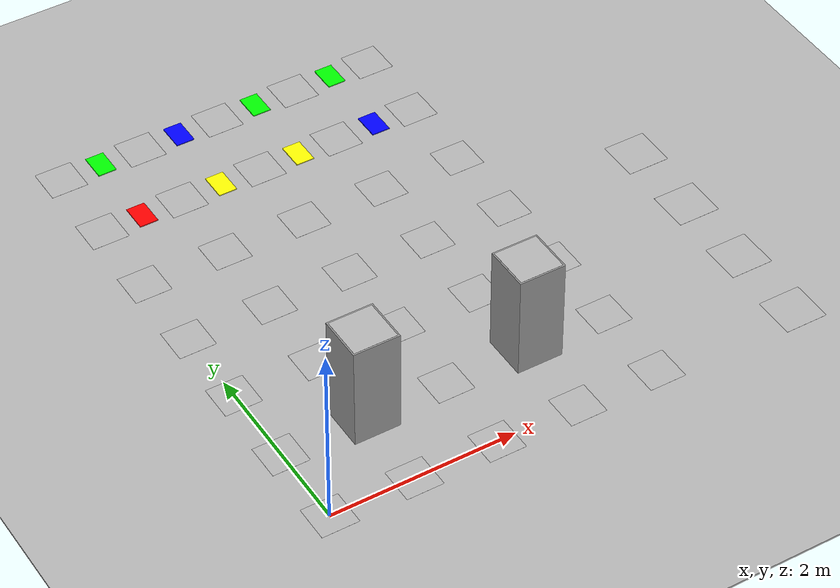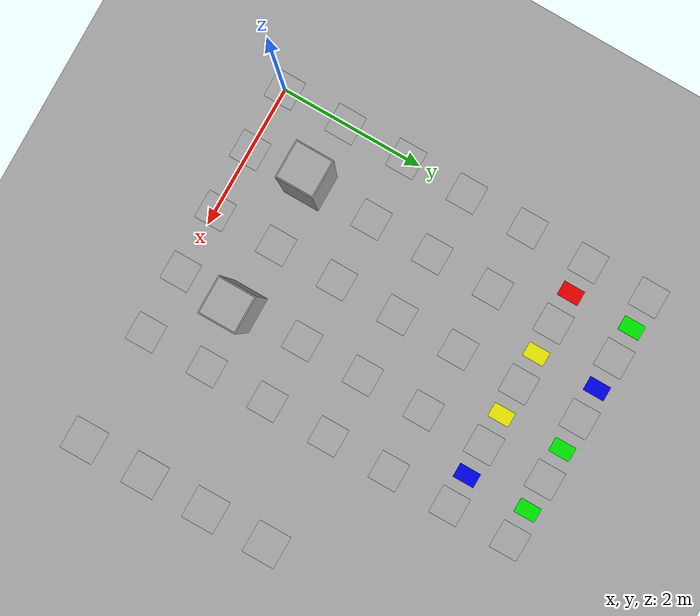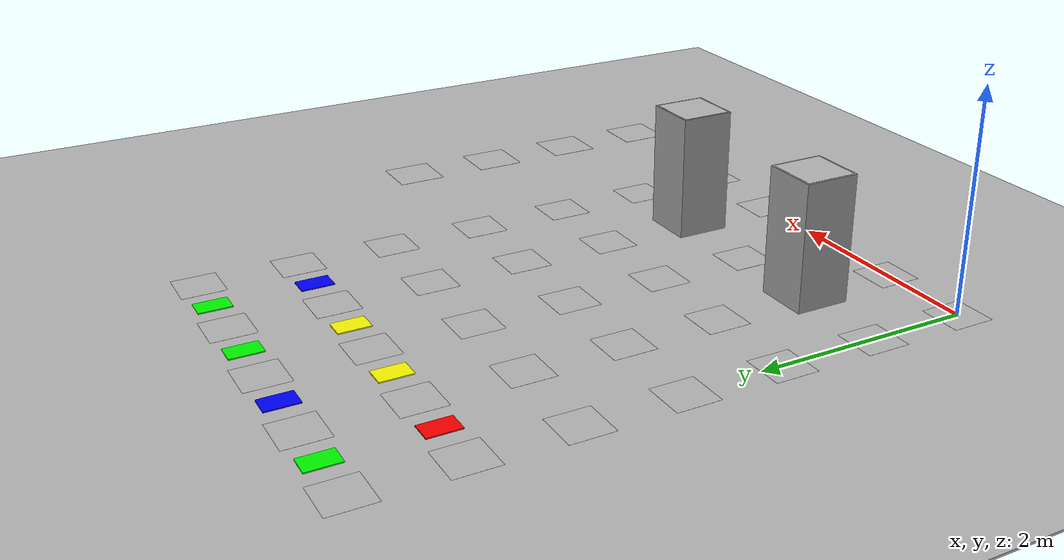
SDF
<sdf version="1.6">
 <world name="default">
  <model name="aruco_2_35">
   <static>1</static>
   <link name="aruco_2_35_link">
    <visual name="visual_marker_2_0">
     <pose>0 0 0 0 -0 1.5708</pose>
     <cast_shadows>0</cast_shadows>
     <geometry><box><size>0.4 0.4 0.001</size></box></geometry>
     <material>
      <script>
       <uri>model://aruco_map_guap_txt/materials/scripts</uri>
       <uri>model://aruco_map_guap_txt/materials/textures</uri>
       <name>aruco/marker_2_0</name>
      </script>
     </material>
    </visual>
    <visual name="visual_marker_2_1">
     <pose>0.9 0 0 0 -0 1.5708</pose>
     <cast_shadows>0</cast_shadows>
     <geometry><box><size>0.4 0.4 0.001</size></box></geometry>
     <material>
      <script>
       <uri>model://aruco_map_guap_txt/materials/scripts</uri>
       <uri>model://aruco_map_guap_txt/materials/textures</uri>
       <name>aruco/marker_2_1</name>
      </script>
     </material>
    </visual>
    <visual name="visual_marker_2_2">
     <pose>1.8 0 0 0 -0 1.5708</pose>
     <cast_shadows>0</cast_shadows>
     <geometry><box><size>0.4 0.4 0.001</size></box></geometry>
     <material>
      <script>
       <uri>model://aruco_map_guap_txt/materials/scripts</uri>
       <uri>model://aruco_map_guap_txt/materials/textures</uri>
       <name>aruco/marker_2_2</name>
      </script>
     </material>
    </visual>
    <visual name="visual_marker_2_3">
     <pose>2.7 0 0 0 -0 1.5708</pose>
     <cast_shadows>0</cast_shadows>
     <geometry><box><size>0.4 0.4 0.001</size></box></geometry>
     <material>
      <script>
       <uri>model://aruco_map_guap_txt/materials/scripts</uri>
       <uri>model://aruco_map_guap_txt/materials/textures</uri>
       <name>aruco/marker_2_3</name>
      </script>
     </material>
    </visual>
    <visual name="visual_marker_2_4">
     <pose>3.6 0 0 0 -0 1.5708</pose>
     <cast_shadows>0</cast_shadows>
     <geometry><box><size>0.4 0.4 0.001</size></box></geometry>
     <material>
      <script>
       <uri>model://aruco_map_guap_txt/materials/scripts</uri>
       <uri>model://aruco_map_guap_txt/materials/textures</uri>
       <name>aruco/marker_2_4</name>
      </script>
     </material>
    </visual>
    <visual name="visual_marker_2_5">
     <pose>0 0.9 0 0 -0 1.5708</pose>
     <cast_shadows>0</cast_shadows>
     <geometry><box><size>0.4 0.4 0.001</size></box></geometry>
     <material>
      <script>
       <uri>model://aruco_map_guap_txt/materials/scripts</uri>
       <uri>model://aruco_map_guap_txt/materials/textures</uri>
       <name>aruco/marker_2_5</name>
      </script>
     </material>
    </visual>
    <visual name="visual_marker_2_6">
     <pose>0.9 0.9 0 0 -0 1.5708</pose>
     <cast_shadows>0</cast_shadows>
     <geometry><box><size>0.4 0.4 0.001</size></box></geometry>
     <material>
      <script>
       <uri>model://aruco_map_guap_txt/materials/scripts</uri>
       <uri>model://aruco_map_guap_txt/materials/textures</uri>
       <name>aruco/marker_2_6</name>
      </script>
     </material>
    </visual>
    <visual name="visual_marker_2_7">
     <pose>1.8 0.9 0 0 -0 1.5708</pose>
     <cast_shadows>0</cast_shadows>
     <geometry><box><size>0.4 0.4 0.001</size></box></geometry>
     <material>
      <script>
       <uri>model://aruco_map_guap_txt/materials/scripts</uri>
       <uri>model://aruco_map_guap_txt/materials/textures</uri>
       <name>aruco/marker_2_7</name>
      </script>
     </material>
    </visual>
    <visual name="visual_marker_2_8">
     <pose>2.7 0.9 0 0 -0 1.5708</pose>
     <cast_shadows>0</cast_shadows>
     <geometry><box><size>0.4 0.4 0.001</size></box></geometry>
     <material>
      <script>
       <uri>model://aruco_map_guap_txt/materials/scripts</uri>
       <uri>model://aruco_map_guap_txt/materials/textures</uri>
       <name>aruco/marker_2_8</name>
      </script>
     </material>
    </visual>
    <visual name="visual_marker_2_9">
     <pose>3.6 0.9 0 0 -0 1.5708</pose>
     <cast_shadows>0</cast_shadows>
     <geometry><box><size>0.4 0.4 0.001</size></box></geometry>
     <material>
      <script>
       <uri>model://aruco_map_guap_txt/materials/scripts</uri>
       <uri>model://aruco_map_guap_txt/materials/textures</uri>
       <name>aruco/marker_2_9</name>
      </script>
     </material>
    </visual>
    <visual name="visual_marker_2_10">
     <pose>0 1.8 0 0 -0 1.5708</pose>
     <cast_shadows>0</cast_shadows>
     <geometry><box><size>0.4 0.4 0.001</size></box></geometry>
     <material>
      <script>
       <uri>model://aruco_map_guap_txt/materials/scripts</uri>
       <uri>model://aruco_map_guap_txt/materials/textures</uri>
       <name>aruco/marker_2_10</name>
      </script>
     </material>
    </visual>
    <visual name="visual_marker_2_11">
     <pose>0.9 1.8 0 0 -0 1.5708</pose>
     <cast_shadows>0</cast_shadows>
     <geometry><box><size>0.4 0.4 0.001</size></box></geometry>
     <material>
      <script>
       <uri>model://aruco_map_guap_txt/materials/scripts</uri>
       <uri>model://aruco_map_guap_txt/materials/textures</uri>
       <name>aruco/marker_2_11</name>
      </script>
     </material>
    </visual>
    <visual name="visual_marker_2_12">
     <pose>1.8 1.8 0 0 -0 1.5708</pose>
     <cast_shadows>0</cast_shadows>
     <geometry><box><size>0.4 0.4 0.001</size></box></geometry>
     <material>
      <script>
       <uri>model://aruco_map_guap_txt/materials/scripts</uri>
       <uri>model://aruco_map_guap_txt/materials/textures</uri>
       <name>aruco/marker_2_12</name>
      </script>
     </material>
    </visual>
    <visual name="visual_marker_2_13">
     <pose>2.7 1.8 0 0 -0 1.5708</pose>
     <cast_shadows>0</cast_shadows>
     <geometry><box><size>0.4 0.4 0.001</size></box></geometry>
     <material>
      <script>
       <uri>model://aruco_map_guap_txt/materials/scripts</uri>
       <uri>model://aruco_map_guap_txt/materials/textures</uri>
       <name>aruco/marker_2_13</name>
      </script>
     </material>
    </visual>
    <visual name="visual_marker_2_14">
     <pose>3.6 1.8 0 0 -0 1.5708</pose>
     <cast_shadows>0</cast_shadows>
     <geometry><box><size>0.4 0.4 0.001</size></box></geometry>
     <material>
      <script>
       <uri>model://aruco_map_guap_txt/materials/scripts</uri>
       <uri>model://aruco_map_guap_txt/materials/textures</uri>
       <name>aruco/marker_2_14</name>
      </script>
     </material>
    </visual>
    <visual name="visual_marker_2_15">
     <pose>0 2.7 0 0 -0 1.5708</pose>
     <cast_shadows>0</cast_shadows>
     <geometry><box><size>0.4 0.4 0.001</size></box></geometry>
     <material>
      <script>
       <uri>model://aruco_map_guap_txt/materials/scripts</uri>
       <uri>model://aruco_map_guap_txt/materials/textures</uri>
       <name>aruco/marker_2_15</name>
      </script>
     </material>
    </visual>
    <visual name="visual_marker_2_16">
     <pose>0.9 2.7 0 0 -0 1.5708</pose>
     <cast_shadows>0</cast_shadows>
     <geometry><box><size>0.4 0.4 0.001</size></box></geometry>
     <material>
      <script>
       <uri>model://aruco_map_guap_txt/materials/scripts</uri>
       <uri>model://aruco_map_guap_txt/materials/textures</uri>
       <name>aruco/marker_2_16</name>
      </script>
     </material>
    </visual>
    <visual name="visual_marker_2_17">
     <pose>1.8 2.7 0 0 -0 1.5708</pose>
     <cast_shadows>0</cast_shadows>
     <geometry><box><size>0.4 0.4 0.001</size></box></geometry>
     <material>
      <script>
       <uri>model://aruco_map_guap_txt/materials/scripts</uri>
       <uri>model://aruco_map_guap_txt/materials/textures</uri>
       <name>aruco/marker_2_17</name>
      </script>
     </material>
    </visual>
    <visual name="visual_marker_2_18">
     <pose>2.7 2.7 0 0 -0 1.5708</pose>
     <cast_shadows>0</cast_shadows>
     <geometry><box><size>0.4 0.4 0.001</size></box></geometry>
     <material>
      <script>
       <uri>model://aruco_map_guap_txt/materials/scripts</uri>
       <uri>model://aruco_map_guap_txt/materials/textures</uri>
       <name>aruco/marker_2_18</name>
      </script>
     </material>
    </visual>
    <visual name="visual_marker_2_19">
     <pose>3.6 2.7 0 0 -0 1.5708</pose>
     <cast_shadows>0</cast_shadows>
     <geometry><box><size>0.4 0.4 0.001</size></box></geometry>
     <material>
      <script>
       <uri>model://aruco_map_guap_txt/materials/scripts</uri>
       <uri>model://aruco_map_guap_txt/materials/textures</uri>
       <name>aruco/marker_2_19</name>
      </script>
     </material>
    </visual>
    <visual name="visual_marker_2_20">
     <pose>0 3.6 0 0 -0 1.5708</pose>
     <cast_shadows>0</cast_shadows>
     <geometry><box><size>0.4 0.4 0.001</size></box></geometry>
     <material>
      <script>
       <uri>model://aruco_map_guap_txt/materials/scripts</uri>
       <uri>model://aruco_map_guap_txt/materials/textures</uri>
       <name>aruco/marker_2_20</name>
      </script>
     </material>
    </visual>
    <visual name="visual_marker_2_21">
     <pose>0.9 3.6 0 0 -0 1.5708</pose>
     <cast_shadows>0</cast_shadows>
     <geometry><box><size>0.4 0.4 0.001</size></box></geometry>
     <material>
      <script>
       <uri>model://aruco_map_guap_txt/materials/scripts</uri>
       <uri>model://aruco_map_guap_txt/materials/textures</uri>
       <name>aruco/marker_2_21</name>
      </script>
     </material>
    </visual>
    <visual name="visual_marker_2_22">
     <pose>1.8 3.6 0 0 -0 1.5708</pose>
     <cast_shadows>0</cast_shadows>
     <geometry><box><size>0.4 0.4 0.001</size></box></geometry>
     <material>
      <script>
       <uri>model://aruco_map_guap_txt/materials/scripts</uri>
       <uri>model://aruco_map_guap_txt/materials/textures</uri>
       <name>aruco/marker_2_22</name>
      </script>
     </material>
    </visual>
    <visual name="visual_marker_2_23">
     <pose>2.7 3.6 0 0 -0 1.5708</pose>
     <cast_shadows>0</cast_shadows>
     <geometry><box><size>0.4 0.4 0.001</size></box></geometry>
     <material>
      <script>
       <uri>model://aruco_map_guap_txt/materials/scripts</uri>
       <uri>model://aruco_map_guap_txt/materials/textures</uri>
       <name>aruco/marker_2_23</name>
      </script>
     </material>
    </visual>
    <visual name="visual_marker_2_24">
     <pose>3.6 3.6 0 0 -0 1.5708</pose>
     <cast_shadows>0</cast_shadows>
     <geometry><box><size>0.4 0.4 0.001</size></box></geometry>
     <material>
      <script>
       <uri>model://aruco_map_guap_txt/materials/scripts</uri>
       <uri>model://aruco_map_guap_txt/materials/textures</uri>
       <name>aruco/marker_2_24</name>
      </script>
     </material>
    </visual>
    <visual name="visual_marker_2_25">
     <pose>0 4.5 0 0 -0 1.5708</pose>
     <cast_shadows>0</cast_shadows>
     <geometry><box><size>0.4 0.4 0.001</size></box></geometry>
     <material>
      <script>
       <uri>model://aruco_map_guap_txt/materials/scripts</uri>
       <uri>model://aruco_map_guap_txt/materials/textures</uri>
       <name>aruco/marker_2_25</name>
      </script>
     </material>
    </visual>
    <visual name="visual_marker_2_26">
     <pose>0.9 4.5 0 0 -0 1.5708</pose>
     <cast_shadows>0</cast_shadows>
     <geometry><box><size>0.4 0.4 0.001</size></box></geometry>
     <material>
      <script>
       <uri>model://aruco_map_guap_txt/materials/scripts</uri>
       <uri>model://aruco_map_guap_txt/materials/textures</uri>
       <name>aruco/marker_2_26</name>
      </script>
     </material>
    </visual>
    <visual name="visual_marker_2_27">
     <pose>1.8 4.5 0 0 -0 1.5708</pose>
     <cast_shadows>0</cast_shadows>
     <geometry><box><size>0.4 0.4 0.001</size></box></geometry>
     <material>
      <script>
       <uri>model://aruco_map_guap_txt/materials/scripts</uri>
       <uri>model://aruco_map_guap_txt/materials/textures</uri>
       <name>aruco/marker_2_27</name>
      </script>
     </material>
    </visual>
    <visual name="visual_marker_2_28">
     <pose>2.7 4.5 0 0 -0 1.5708</pose>
     <cast_shadows>0</cast_shadows>
     <geometry><box><size>0.4 0.4 0.001</size></box></geometry>
     <material>
      <script>
       <uri>model://aruco_map_guap_txt/materials/scripts</uri>
       <uri>model://aruco_map_guap_txt/materials/textures</uri>
       <name>aruco/marker_2_28</name>
      </script>
     </material>
    </visual>
    <visual name="visual_marker_2_29">
     <pose>3.6 4.5 0 0 -0 1.5708</pose>
     <cast_shadows>0</cast_shadows>
     <geometry><box><size>0.4 0.4 0.001</size></box></geometry>
     <material>
      <script>
       <uri>model://aruco_map_guap_txt/materials/scripts</uri>
       <uri>model://aruco_map_guap_txt/materials/textures</uri>
       <name>aruco/marker_2_29</name>
      </script>
     </material>
    </visual>
    <visual name="visual_marker_2_30">
     <pose>0 5.4 0 0 -0 1.5708</pose>
     <cast_shadows>0</cast_shadows>
     <geometry><box><size>0.4 0.4 0.001</size></box></geometry>
     <material>
      <script>
       <uri>model://aruco_map_guap_txt/materials/scripts</uri>
       <uri>model://aruco_map_guap_txt/materials/textures</uri>
       <name>aruco/marker_2_30</name>
      </script>
     </material>
    </visual>
    <visual name="visual_marker_2_31">
     <pose>0.9 5.4 0 0 -0 1.5708</pose>
     <cast_shadows>0</cast_shadows>
     <geometry><box><size>0.4 0.4 0.001</size></box></geometry>
     <material>
      <script>
       <uri>model://aruco_map_guap_txt/materials/scripts</uri>
       <uri>model://aruco_map_guap_txt/materials/textures</uri>
       <name>aruco/marker_2_31</name>
      </script>
     </material>
    </visual>
    <visual name="visual_marker_2_32">
     <pose>1.8 5.4 0 0 -0 1.5708</pose>
     <cast_shadows>0</cast_shadows>
     <geometry><box><size>0.4 0.4 0.001</size></box></geometry>
     <material>
      <script>
       <uri>model://aruco_map_guap_txt/materials/scripts</uri>
       <uri>model://aruco_map_guap_txt/materials/textures</uri>
       <name>aruco/marker_2_32</name>
      </script>
     </material>
    </visual>
    <visual name="visual_marker_2_33">
     <pose>2.7 5.4 0 0 -0 1.5708</pose>
     <cast_shadows>0</cast_shadows>
     <geometry><box><size>0.4 0.4 0.001</size></box></geometry>
     <material>
      <script>
       <uri>model://aruco_map_guap_txt/materials/scripts</uri>
       <uri>model://aruco_map_guap_txt/materials/textures</uri>
       <name>aruco/marker_2_33</name>
      </script>
     </material>
    </visual>
    <visual name="visual_marker_2_34">
     <pose>3.6 5.4 0 0 -0 1.5708</pose>
     <cast_shadows>0</cast_shadows>
     <geometry><box><size>0.4 0.4 0.001</size></box></geometry>
     <material>
      <script>
       <uri>model://aruco_map_guap_txt/materials/scripts</uri>
       <uri>model://aruco_map_guap_txt/materials/textures</uri>
       <name>aruco/marker_2_34</name>
      </script>
     </material>
    </visual>
   </link>
  </model>
  <light name="sun" type="directional">
   <pose>0 0 10 0 -0 0</pose>
   <diffuse>0.8 0.8 0.8 1</diffuse>
   <specular>0.2 0.2 0.2 1</specular>
   <attenuation>
    <range>1000</range>
    <constant>0.9</constant>
    <linear>0.01</linear>
    <quadratic>0.001</quadratic>
   </attenuation>
   <direction>-0.5 0.1 -0.9</direction>
  </light>
  <model name="parquet_plane">
   <static>1</static>
   <link name="link">
    <collision name="collision"><geometry><box><size>200 200 0.02</size></box></geometry></collision>
    <visual name="visual">
     <cast_shadows>0</cast_shadows>
     <geometry><box><size>200 200 0.02</size></box></geometry>
     <material>
      <script>
       <uri>model://parquet_plane/materials/scripts</uri>
       <uri>model://parquet_plane/materials/textures</uri>
       <name>parquet</name>
      </script>
     </material>
    </visual>
   </link>
   <pose>0 0 -0.01 0 -0 0</pose>
  </model>
  <scene>
   <ambient>0.8 0.8 0.8 1</ambient>
   <background>0.8 0.9 1 1</background>
   <shadows>0</shadows>
   <grid>0</grid>
   <origin_visual>0</origin_visual>
  </scene>
  <physics name="default_physics" default="0" type="ode">
   <ode>
    <solver>
     <type>quick</type>
     <iters>10</iters>
     <sor>1.3</sor>
     <use_dynamic_moi_rescaling>0</use_dynamic_moi_rescaling>
    </solver>
    <constraints>
     <cfm>0</cfm>
     <erp>0.2</erp>
     <contact_max_correcting_vel>100</contact_max_correcting_vel>
     <contact_surface_layer>0.001</contact_surface_layer>
    </constraints>
   </ode>
   <max_step_size>0.004</max_step_size>
   <real_time_factor>1</real_time_factor>
   <real_time_update_rate>250</real_time_update_rate>
  </physics>
  <gravity>0 0 -9.8066</gravity>
  <magnetic_field>6e-06 2.3e-05 -4.2e-05</magnetic_field>
  <atmosphere type="adiabatic"/>
  <spherical_coordinates>
   <surface_model>EARTH_WGS84</surface_model>
   <latitude_deg>0</latitude_deg>
   <longitude_deg>0</longitude_deg>
   <elevation>0</elevation>
   <heading_deg>0</heading_deg>
  </spherical_coordinates>
  <model name="green">
   <link name="link">
    <inertial>
     <mass>1</mass>
     <inertia>
      <ixx>0.166667</ixx>
      <ixy>0</ixy>
      <ixz>0</ixz>
      <iyy>0.166667</iyy>
      <iyz>0</iyz>
      <izz>0.166667</izz>
     </inertia>
    </inertial>
    <visual name="visual">
     <geometry><box><size>0.2 0.3 0.02</size></box></geometry>
     <material>
      <script><name>Gazebo/Grey</name><uri>file://media/materials/scripts/gazebo.material</uri></script>
      <shader type="pixel"><normal_map>__default__</normal_map></shader>
      <ambient>0 1 0 1</ambient>
      <diffuse>0 1 0 1</diffuse>
      <specular>0 0 0 1</specular>
      <emissive>0 0 0 1</emissive>
     </material>
    </visual>
    <collision name="collision">
     <geometry><box><size>0.2 0.3 0.02</size></box></geometry>
     <surface>
      <friction>
       <ode><mu>1</mu><mu2>1</mu2><fdir1>0 0 0</fdir1><slip1>0</slip1><slip2>0</slip2></ode>
       <torsional>
        <coefficient>1</coefficient>
        <patch_radius>0</patch_radius>
        <surface_radius>0</surface_radius>
        <use_patch_radius>1</use_patch_radius>
        <ode><slip>0</slip></ode>
       </torsional>
      </friction>
      <bounce><restitution_coefficient>0</restitution_coefficient><threshold>1e+06</threshold></bounce>
      <contact>
       <collide_without_contact>0</collide_without_contact>
       <collide_without_contact_bitmask>1</collide_without_contact_bitmask>
       <collide_bitmask>1</collide_bitmask>
       <ode>
        <soft_cfm>0</soft_cfm>
        <soft_erp>0.2</soft_erp>
        <kp>1e+13</kp>
        <kd>1</kd>
        <max_vel>0.01</max_vel>
        <min_depth>0</min_depth>
       </ode>
       <bullet>
        <split_impulse>1</split_impulse>
        <split_impulse_penetration_threshold>-0.01</split_impulse_penetration_threshold>
        <soft_cfm>0</soft_cfm>
        <soft_erp>0.2</soft_erp>
        <kp>1e+13</kp>
        <kd>1</kd>
       </bullet>
      </contact>
     </surface>
    </collision>
   </link>
   <static>1</static>
   <pose>0.45 5.4 0 0 -0 0</pose>
  </model>
  <model name="green_0">
   <link name="link">
    <inertial>
     <mass>1</mass>
     <inertia>
      <ixx>0.166667</ixx>
      <ixy>0</ixy>
      <ixz>0</ixz>
      <iyy>0.166667</iyy>
      <iyz>0</iyz>
      <izz>0.166667</izz>
     </inertia>
    </inertial>
    <visual name="visual">
     <geometry><box><size>0.2 0.3 0.02</size></box></geometry>
     <material>
      <script><name>Gazebo/Grey</name><uri>file://media/materials/scripts/gazebo.material</uri></script>
      <shader type="pixel"><normal_map>__default__</normal_map></shader>
      <ambient>0 1 0 1</ambient>
      <diffuse>0 1 0 1</diffuse>
      <specular>0 0 0 1</specular>
      <emissive>0 0 0 1</emissive>
     </material>
    </visual>
    <collision name="collision">
     <geometry><box><size>0.2 0.3 0.02</size></box></geometry>
     <surface>
      <friction>
       <ode><mu>1</mu><mu2>1</mu2><fdir1>0 0 0</fdir1><slip1>0</slip1><slip2>0</slip2></ode>
       <torsional>
        <coefficient>1</coefficient>
        <patch_radius>0</patch_radius>
        <surface_radius>0</surface_radius>
        <use_patch_radius>1</use_patch_radius>
        <ode><slip>0</slip></ode>
       </torsional>
      </friction>
      <bounce><restitution_coefficient>0</restitution_coefficient><threshold>1e+06</threshold></bounce>
      <contact>
       <collide_without_contact>0</collide_without_contact>
       <collide_without_contact_bitmask>1</collide_without_contact_bitmask>
       <collide_bitmask>1</collide_bitmask>
       <ode>
        <soft_cfm>0</soft_cfm>
        <soft_erp>0.2</soft_erp>
        <kp>1e+13</kp>
        <kd>1</kd>
        <max_vel>0.01</max_vel>
        <min_depth>0</min_depth>
       </ode>
       <bullet>
        <split_impulse>1</split_impulse>
        <split_impulse_penetration_threshold>-0.01</split_impulse_penetration_threshold>
        <soft_cfm>0</soft_cfm>
        <soft_erp>0.2</soft_erp>
        <kp>1e+13</kp>
        <kd>1</kd>
       </bullet>
      </contact>
     </surface>
    </collision>
   </link>
   <static>1</static>
   <pose>2.25 5.4 0 0 -0 0</pose>
  </model>
  <model name="red">
   <link name="link">
    <inertial>
     <mass>1</mass>
     <inertia>
      <ixx>0.166667</ixx>
      <ixy>0</ixy>
      <ixz>0</ixz>
      <iyy>0.166667</iyy>
      <iyz>0</iyz>
      <izz>0.166667</izz>
     </inertia>
    </inertial>
    <visual name="visual">
     <geometry><box><size>0.2 0.3 0.02</size></box></geometry>
     <material>
      <script><name>Gazebo/Grey</name><uri>file://media/materials/scripts/gazebo.material</uri></script>
      <shader type="pixel"><normal_map>__default__</normal_map></shader>
      <ambient>1 0 0 1</ambient>
      <diffuse>1 0 0 1</diffuse>
      <specular>0 0 0 1</specular>
      <emissive>0 0 0 1</emissive>
     </material>
    </visual>
    <collision name="collision">
     <geometry><box><size>0.2 0.3 0.02</size></box></geometry>
     <surface>
      <friction>
       <ode><mu>1</mu><mu2>1</mu2><fdir1>0 0 0</fdir1><slip1>0</slip1><slip2>0</slip2></ode>
       <torsional>
        <coefficient>1</coefficient>
        <patch_radius>0</patch_radius>
        <surface_radius>0</surface_radius>
        <use_patch_radius>1</use_patch_radius>
        <ode><slip>0</slip></ode>
       </torsional>
      </friction>
      <bounce><restitution_coefficient>0</restitution_coefficient><threshold>1e+06</threshold></bounce>
      <contact>
       <collide_without_contact>0</collide_without_contact>
       <collide_without_contact_bitmask>1</collide_without_contact_bitmask>
       <collide_bitmask>1</collide_bitmask>
       <ode>
        <soft_cfm>0</soft_cfm>
        <soft_erp>0.2</soft_erp>
        <kp>1e+13</kp>
        <kd>1</kd>
        <max_vel>0.01</max_vel>
        <min_depth>0</min_depth>
       </ode>
       <bullet>
        <split_impulse>1</split_impulse>
        <split_impulse_penetration_threshold>-0.01</split_impulse_penetration_threshold>
        <soft_cfm>0</soft_cfm>
        <soft_erp>0.2</soft_erp>
        <kp>1e+13</kp>
        <kd>1</kd>
       </bullet>
      </contact>
     </surface>
    </collision>
   </link>
   <static>1</static>
   <pose>0.45 4.5 0 0 -0 0</pose>
  </model>
  <model name="yellow">
   <link name="link">
    <inertial>
     <mass>1</mass>
     <inertia>
      <ixx>0.166667</ixx>
      <ixy>0</ixy>
      <ixz>0</ixz>
      <iyy>0.166667</iyy>
      <iyz>0</iyz>
      <izz>0.166667</izz>
     </inertia>
    </inertial>
    <visual name="visual">
     <geometry><box><size>0.2 0.3 0.02</size></box></geometry>
     <material>
      <script><name>Gazebo/Grey</name><uri>file://media/materials/scripts/gazebo.material</uri></script>
      <shader type="pixel"><normal_map>__default__</normal_map></shader>
      <ambient>1 1 0 1</ambient>
      <diffuse>1 1 0 1</diffuse>
      <specular>0 0 0 1</specular>
      <emissive>0 0 0 1</emissive>
     </material>
    </visual>
    <collision name="collision">
     <geometry><box><size>0.2 0.3 0.02</size></box></geometry>
     <surface>
      <friction>
       <ode><mu>1</mu><mu2>1</mu2><fdir1>0 0 0</fdir1><slip1>0</slip1><slip2>0</slip2></ode>
       <torsional>
        <coefficient>1</coefficient>
        <patch_radius>0</patch_radius>
        <surface_radius>0</surface_radius>
        <use_patch_radius>1</use_patch_radius>
        <ode><slip>0</slip></ode>
       </torsional>
      </friction>
      <bounce><restitution_coefficient>0</restitution_coefficient><threshold>1e+06</threshold></bounce>
      <contact>
       <collide_without_contact>0</collide_without_contact>
       <collide_without_contact_bitmask>1</collide_without_contact_bitmask>
       <collide_bitmask>1</collide_bitmask>
       <ode>
        <soft_cfm>0</soft_cfm>
        <soft_erp>0.2</soft_erp>
        <kp>1e+13</kp>
        <kd>1</kd>
        <max_vel>0.01</max_vel>
        <min_depth>0</min_depth>
       </ode>
       <bullet>
        <split_impulse>1</split_impulse>
        <split_impulse_penetration_threshold>-0.01</split_impulse_penetration_threshold>
        <soft_cfm>0</soft_cfm>
        <soft_erp>0.2</soft_erp>
        <kp>1e+13</kp>
        <kd>1</kd>
       </bullet>
      </contact>
     </surface>
    </collision>
   </link>
   <static>1</static>
   <pose>1.35 4.5 0 0 -0 0</pose>
  </model>
  <model name="blue">
   <link name="link">
    <inertial>
     <mass>1</mass>
     <inertia>
      <ixx>0.166667</ixx>
      <ixy>0</ixy>
      <ixz>0</ixz>
      <iyy>0.166667</iyy>
      <iyz>0</iyz>
      <izz>0.166667</izz>
     </inertia>
    </inertial>
    <visual name="visual">
     <geometry><box><size>0.2 0.3 0.02</size></box></geometry>
     <material>
      <script><name>Gazebo/Grey</name><uri>file://media/materials/scripts/gazebo.material</uri></script>
      <shader type="pixel"><normal_map>__default__</normal_map></shader>
      <ambient>0 0 1 1</ambient>
      <diffuse>0 0 1 1</diffuse>
      <specular>0 0 0 1</specular>
      <emissive>0 0 0 1</emissive>
     </material>
    </visual>
    <collision name="collision">
     <geometry><box><size>0.2 0.3 0.02</size></box></geometry>
     <surface>
      <friction>
       <ode><mu>1</mu><mu2>1</mu2><fdir1>0 0 0</fdir1><slip1>0</slip1><slip2>0</slip2></ode>
       <torsional>
        <coefficient>1</coefficient>
        <patch_radius>0</patch_radius>
        <surface_radius>0</surface_radius>
        <use_patch_radius>1</use_patch_radius>
        <ode><slip>0</slip></ode>
       </torsional>
      </friction>
      <bounce><restitution_coefficient>0</restitution_coefficient><threshold>1e+06</threshold></bounce>
      <contact>
       <collide_without_contact>0</collide_without_contact>
       <collide_without_contact_bitmask>1</collide_without_contact_bitmask>
       <collide_bitmask>1</collide_bitmask>
       <ode>
        <soft_cfm>0</soft_cfm>
        <soft_erp>0.2</soft_erp>
        <kp>1e+13</kp>
        <kd>1</kd>
        <max_vel>0.01</max_vel>
        <min_depth>0</min_depth>
       </ode>
       <bullet>
        <split_impulse>1</split_impulse>
        <split_impulse_penetration_threshold>-0.01</split_impulse_penetration_threshold>
        <soft_cfm>0</soft_cfm>
        <soft_erp>0.2</soft_erp>
        <kp>1e+13</kp>
        <kd>1</kd>
       </bullet>
      </contact>
     </surface>
    </collision>
   </link>
   <static>1</static>
   <pose>1.35 5.4 0 0 -0 0</pose>
  </model>
  <model name="yellow_0">
   <link name="link">
    <inertial>
     <mass>1</mass>
     <inertia>
      <ixx>0.166667</ixx>
      <ixy>0</ixy>
      <ixz>0</ixz>
      <iyy>0.166667</iyy>
      <iyz>0</iyz>
      <izz>0.166667</izz>
     </inertia>
    </inertial>
    <visual name="visual">
     <geometry><box><size>0.2 0.3 0.02</size></box></geometry>
     <material>
      <script><name>Gazebo/Grey</name><uri>file://media/materials/scripts/gazebo.material</uri></script>
      <shader type="pixel"><normal_map>__default__</normal_map></shader>
      <ambient>1 1 0 1</ambient>
      <diffuse>1 1 0 1</diffuse>
      <specular>0 0 0 1</specular>
      <emissive>0 0 0 1</emissive>
     </material>
    </visual>
    <collision name="collision">
     <geometry><box><size>0.2 0.3 0.02</size></box></geometry>
     <surface>
      <friction>
       <ode><mu>1</mu><mu2>1</mu2><fdir1>0 0 0</fdir1><slip1>0</slip1><slip2>0</slip2></ode>
       <torsional>
        <coefficient>1</coefficient>
        <patch_radius>0</patch_radius>
        <surface_radius>0</surface_radius>
        <use_patch_radius>1</use_patch_radius>
        <ode><slip>0</slip></ode>
       </torsional>
      </friction>
      <bounce><restitution_coefficient>0</restitution_coefficient><threshold>1e+06</threshold></bounce>
      <contact>
       <collide_without_contact>0</collide_without_contact>
       <collide_without_contact_bitmask>1</collide_without_contact_bitmask>
       <collide_bitmask>1</collide_bitmask>
       <ode>
        <soft_cfm>0</soft_cfm>
        <soft_erp>0.2</soft_erp>
        <kp>1e+13</kp>
        <kd>1</kd>
        <max_vel>0.01</max_vel>
        <min_depth>0</min_depth>
       </ode>
       <bullet>
        <split_impulse>1</split_impulse>
        <split_impulse_penetration_threshold>-0.01</split_impulse_penetration_threshold>
        <soft_cfm>0</soft_cfm>
        <soft_erp>0.2</soft_erp>
        <kp>1e+13</kp>
        <kd>1</kd>
       </bullet>
      </contact>
     </surface>
    </collision>
   </link>
   <static>1</static>
   <pose>2.25 4.5 0 0 -0 0</pose>
  </model>
  <model name="blue_0">
   <link name="link">
    <inertial>
     <mass>1</mass>
     <inertia>
      <ixx>0.166667</ixx>
      <ixy>0</ixy>
      <ixz>0</ixz>
      <iyy>0.166667</iyy>
      <iyz>0</iyz>
      <izz>0.166667</izz>
     </inertia>
    </inertial>
    <visual name="visual">
     <geometry><box><size>0.2 0.3 0.02</size></box></geometry>
     <material>
      <script><name>Gazebo/Grey</name><uri>file://media/materials/scripts/gazebo.material</uri></script>
      <shader type="pixel"><normal_map>__default__</normal_map></shader>
      <ambient>0 0 1 1</ambient>
      <diffuse>0 0 1 1</diffuse>
      <specular>0 0 0 1</specular>
      <emissive>0 0 0 1</emissive>
     </material>
    </visual>
    <collision name="collision">
     <geometry><box><size>0.2 0.3 0.02</size></box></geometry>
     <surface>
      <friction>
       <ode><mu>1</mu><mu2>1</mu2><fdir1>0 0 0</fdir1><slip1>0</slip1><slip2>0</slip2></ode>
       <torsional>
        <coefficient>1</coefficient>
        <patch_radius>0</patch_radius>
        <surface_radius>0</surface_radius>
        <use_patch_radius>1</use_patch_radius>
        <ode><slip>0</slip></ode>
       </torsional>
      </friction>
      <bounce><restitution_coefficient>0</restitution_coefficient><threshold>1e+06</threshold></bounce>
      <contact>
       <collide_without_contact>0</collide_without_contact>
       <collide_without_contact_bitmask>1</collide_without_contact_bitmask>
       <collide_bitmask>1</collide_bitmask>
       <ode>
        <soft_cfm>0</soft_cfm>
        <soft_erp>0.2</soft_erp>
        <kp>1e+13</kp>
        <kd>1</kd>
        <max_vel>0.01</max_vel>
        <min_depth>0</min_depth>
       </ode>
       <bullet>
        <split_impulse>1</split_impulse>
        <split_impulse_penetration_threshold>-0.01</split_impulse_penetration_threshold>
        <soft_cfm>0</soft_cfm>
        <soft_erp>0.2</soft_erp>
        <kp>1e+13</kp>
        <kd>1</kd>
       </bullet>
      </contact>
     </surface>
    </collision>
   </link>
   <static>1</static>
   <pose>3.15 4.5 0 0 -0 0</pose>
  </model>
  <model name="green_1">
   <link name="link">
    <inertial>
     <mass>1</mass>
     <inertia>
      <ixx>0.166667</ixx>
      <ixy>0</ixy>
      <ixz>0</ixz>
      <iyy>0.166667</iyy>
      <iyz>0</iyz>
      <izz>0.166667</izz>
     </inertia>
    </inertial>
    <visual name="visual">
     <geometry><box><size>0.2 0.3 0.02</size></box></geometry>
     <material>
      <script><name>Gazebo/Grey</name><uri>file://media/materials/scripts/gazebo.material</uri></script>
      <shader type="pixel"><normal_map>__default__</normal_map></shader>
      <ambient>0 1 0 1</ambient>
      <diffuse>0 1 0 1</diffuse>
      <specular>0 0 0 1</specular>
      <emissive>0 0 0 1</emissive>
     </material>
    </visual>
    <collision name="collision">
     <geometry><box><size>0.2 0.3 0.02</size></box></geometry>
     <surface>
      <friction>
       <ode><mu>1</mu><mu2>1</mu2><fdir1>0 0 0</fdir1><slip1>0</slip1><slip2>0</slip2></ode>
       <torsional>
        <coefficient>1</coefficient>
        <patch_radius>0</patch_radius>
        <surface_radius>0</surface_radius>
        <use_patch_radius>1</use_patch_radius>
        <ode><slip>0</slip></ode>
       </torsional>
      </friction>
      <bounce><restitution_coefficient>0</restitution_coefficient><threshold>1e+06</threshold></bounce>
      <contact>
       <collide_without_contact>0</collide_without_contact>
       <collide_without_contact_bitmask>1</collide_without_contact_bitmask>
       <collide_bitmask>1</collide_bitmask>
       <ode>
        <soft_cfm>0</soft_cfm>
        <soft_erp>0.2</soft_erp>
        <kp>1e+13</kp>
        <kd>1</kd>
        <max_vel>0.01</max_vel>
        <min_depth>0</min_depth>
       </ode>
       <bullet>
        <split_impulse>1</split_impulse>
        <split_impulse_penetration_threshold>-0.01</split_impulse_penetration_threshold>
        <soft_cfm>0</soft_cfm>
        <soft_erp>0.2</soft_erp>
        <kp>1e+13</kp>
        <kd>1</kd>
       </bullet>
      </contact>
     </surface>
    </collision>
   </link>
   <static>1</static>
   <pose>3.15 5.4 0 0 -0 0</pose>
  </model>
  <model name="box_200">
   <link name="link">
    <inertial>
     <mass>1</mass>
     <inertia>
      <ixx>0.166667</ixx>
      <ixy>0</ixy>
      <ixz>0</ixz>
      <iyy>0.166667</iyy>
      <iyz>0</iyz>
      <izz>0.166667</izz>
     </inertia>
    </inertial>
    <pose>0 0 -1 0 -0 0</pose>
    <visual name="visual">
     <geometry><box><size>0.5 0.5 2</size></box></geometry>
     <material>
      <script><name>Gazebo/Grey</name><uri>file://media/materials/scripts/gazebo.material</uri></script>
      <shader type="pixel"><normal_map>__default__</normal_map></shader>
      <ambient>0.3 0.3 0.3 1</ambient>
      <diffuse>0.7 0.7 0.7 1</diffuse>
      <specular>0.01 0.01 0.01 1</specular>
      <emissive>0 0 0 1</emissive>
     </material>
    </visual>
    <collision name="collision">
     <geometry><box><size>0.5 0.5 2</size></box></geometry>
     <surface>
      <friction>
       <ode><mu>1</mu><mu2>1</mu2><fdir1>0 0 0</fdir1><slip1>0</slip1><slip2>0</slip2></ode>
       <torsional>
        <coefficient>1</coefficient>
        <patch_radius>0</patch_radius>
        <surface_radius>0</surface_radius>
        <use_patch_radius>1</use_patch_radius>
        <ode><slip>0</slip></ode>
       </torsional>
      </friction>
      <bounce><restitution_coefficient>0</restitution_coefficient><threshold>1e+06</threshold></bounce>
      <contact>
       <collide_without_contact>0</collide_without_contact>
       <collide_without_contact_bitmask>1</collide_without_contact_bitmask>
       <collide_bitmask>1</collide_bitmask>
       <ode>
        <soft_cfm>0</soft_cfm>
        <soft_erp>0.2</soft_erp>
        <kp>1e+13</kp>
        <kd>1</kd>
        <max_vel>0.01</max_vel>
        <min_depth>0</min_depth>
       </ode>
       <bullet>
        <split_impulse>1</split_impulse>
        <split_impulse_penetration_threshold>-0.01</split_impulse_penetration_threshold>
        <soft_cfm>0</soft_cfm>
        <soft_erp>0.2</soft_erp>
        <kp>1e+13</kp>
        <kd>1</kd>
       </bullet>
      </contact>
     </surface>
    </collision>
   </link>
   <static>1</static>
   <pose>0.9 0.9 1.16 0 -0 0</pose>
  </model>
  <model name="box_200_0">
   <link name="link">
    <inertial>
     <mass>1</mass>
     <inertia>
      <ixx>0.166667</ixx>
      <ixy>0</ixy>
      <ixz>0</ixz>
      <iyy>0.166667</iyy>
      <iyz>0</iyz>
      <izz>0.166667</izz>
     </inertia>
    </inertial>
    <pose>0 0 -1 0 -0 0</pose>
    <visual name="visual">
     <geometry><box><size>0.5 0.5 2</size></box></geometry>
     <material>
      <script><name>Gazebo/Grey</name><uri>file://media/materials/scripts/gazebo.material</uri></script>
      <shader type="pixel"><normal_map>__default__</normal_map></shader>
      <ambient>0.3 0.3 0.3 1</ambient>
      <diffuse>0.7 0.7 0.7 1</diffuse>
      <specular>0.01 0.01 0.01 1</specular>
      <emissive>0 0 0 1</emissive>
     </material>
    </visual>
    <collision name="collision">
     <geometry><box><size>0.5 0.5 2</size></box></geometry>
     <surface>
      <friction>
       <ode><mu>1</mu><mu2>1</mu2><fdir1>0 0 0</fdir1><slip1>0</slip1><slip2>0</slip2></ode>
       <torsional>
        <coefficient>1</coefficient>
        <patch_radius>0</patch_radius>
        <surface_radius>0</surface_radius>
        <use_patch_radius>1</use_patch_radius>
        <ode><slip>0</slip></ode>
       </torsional>
      </friction>
      <bounce><restitution_coefficient>0</restitution_coefficient><threshold>1e+06</threshold></bounce>
      <contact>
       <collide_without_contact>0</collide_without_contact>
       <collide_without_contact_bitmask>1</collide_without_contact_bitmask>
       <collide_bitmask>1</collide_bitmask>
       <ode>
        <soft_cfm>0</soft_cfm>
        <soft_erp>0.2</soft_erp>
        <kp>1e+13</kp>
        <kd>1</kd>
        <max_vel>0.01</max_vel>
        <min_depth>0</min_depth>
       </ode>
       <bullet>
        <split_impulse>1</split_impulse>
        <split_impulse_penetration_threshold>-0.01</split_impulse_penetration_threshold>
        <soft_cfm>0</soft_cfm>
        <soft_erp>0.2</soft_erp>
        <kp>1e+13</kp>
        <kd>1</kd>
       </bullet>
      </contact>
     </surface>
    </collision>
   </link>
   <static>1</static>
   <pose>2.7 0.9 1.16 0 -0 0</pose>
  </model>
  <model name="aruco_200">
   <static>1</static>
   <link name="marker_200_link">
    <pose>0 0 0.001 0 -0 1.5708</pose>
    <visual name="visual_marker_200">
     <cast_shadows>0</cast_shadows>
     <geometry><box><size>0.466667 0.466667 0.001</size></box></geometry>
     <material>
      <script>
       <uri>model://aruco_200/materials/scripts</uri>
       <uri>model://aruco_200/materials/textures</uri>
       <name>aruco/marker_200</name>
      </script>
     </material>
    </visual>
   </link>
   <pose>5.2 0 0 0 -0 0</pose>
  </model>
  <model name="aruco_201">
   <static>1</static>
   <link name="marker_201_link">
    <pose>0 0 0.001 0 -0 1.5708</pose>
    <visual name="visual_marker_201">
     <cast_shadows>0</cast_shadows>
     <geometry><box><size>0.466667 0.466667 0.001</size></box></geometry>
     <material>
      <script>
       <uri>model://aruco_201/materials/scripts</uri>
       <uri>model://aruco_201/materials/textures</uri>
       <name>aruco/marker_201</name>
      </script>
     </material>
    </visual>
   </link>
   <pose>5.2 0.9 0 0 -0 0</pose>
  </model>
  <model name="aruco_202">
   <static>1</static>
   <link name="marker_202_link">
    <pose>0 0 0.001 0 -0 1.5708</pose>
    <visual name="visual_marker_202">
     <cast_shadows>0</cast_shadows>
     <geometry><box><size>0.466667 0.466667 0.001</size></box></geometry>
     <material>
      <script>
       <uri>model://aruco_202/materials/scripts</uri>
       <uri>model://aruco_202/materials/textures</uri>
       <name>aruco/marker_202</name>
      </script>
     </material>
    </visual>
   </link>
   <pose>5.2 1.8 0 0 -0 0</pose>
  </model>
  <model name="aruco_203">
   <static>1</static>
   <link name="marker_203_link">
    <pose>0 0 0.001 0 -0 1.5708</pose>
    <visual name="visual_marker_203">
     <cast_shadows>0</cast_shadows>
     <geometry><box><size>0.466667 0.466667 0.001</size></box></geometry>
     <material>
      <script>
       <uri>model://aruco_203/materials/scripts</uri>
       <uri>model://aruco_203/materials/textures</uri>
       <name>aruco/marker_203</name>
      </script>
     </material>
    </visual>
   </link>
   <pose>5.2 2.7 0 0 -0 0</pose>
  </model>
  <model name="aruco_200_0">
   <static>1</static>
   <link name="marker_200_link">
    <pose>0 0 0.001 0 -0 1.5708</pose>
    <visual name="visual_marker_200">
     <cast_shadows>0</cast_shadows>
     <geometry><box><size>0.466667 0.466667 0.001</size></box></geometry>
     <material>
      <script>
       <uri>model://aruco_200/materials/scripts</uri>
       <uri>model://aruco_200/materials/textures</uri>
       <name>aruco/marker_200</name>
      </script>
     </material>
    </visual>
   </link>
   <pose>0.9 0.9 1.16 0 -0 0</pose>
  </model>
  <model name="aruco_201_0">
   <static>1</static>
   <link name="marker_201_link">
    <pose>0 0 0.001 0 -0 1.5708</pose>
    <visual name="visual_marker_201">
     <cast_shadows>0</cast_shadows>
     <geometry><box><size>0.466667 0.466667 0.001</size></box></geometry>
     <material>
      <script>
       <uri>model://aruco_201/materials/scripts</uri>
       <uri>model://aruco_201/materials/textures</uri>
       <name>aruco/marker_201</name>
      </script>
     </material>
    </visual>
   </link>
   <pose>2.7 0.9 1.16 0 -0 0</pose>
  </model>
 </world>
</sdf>
